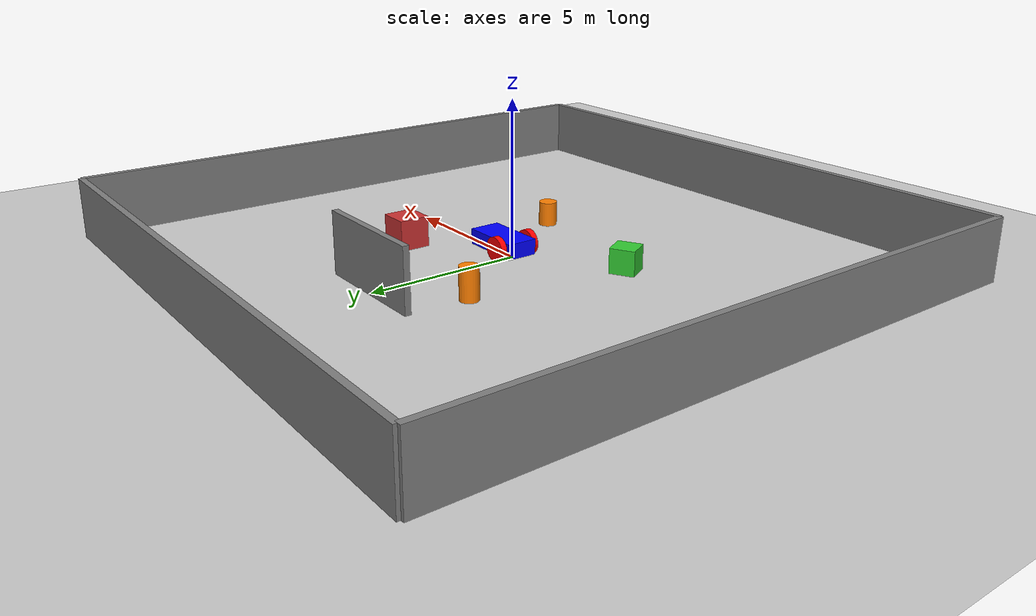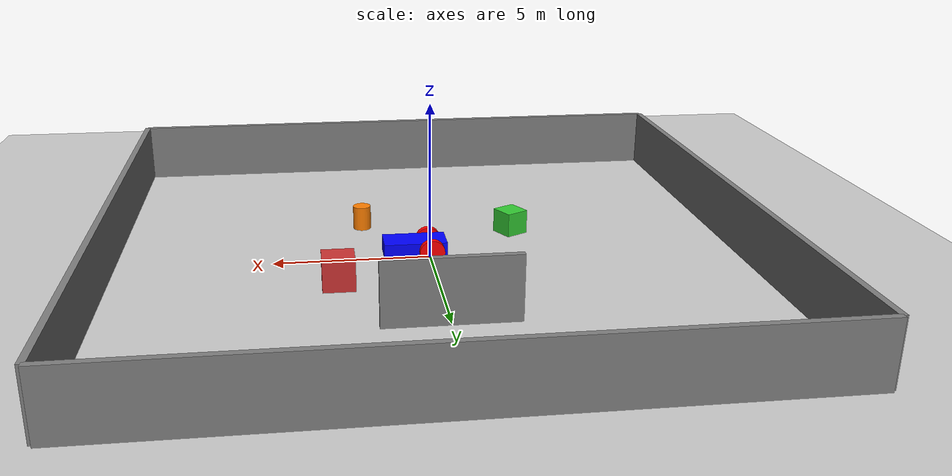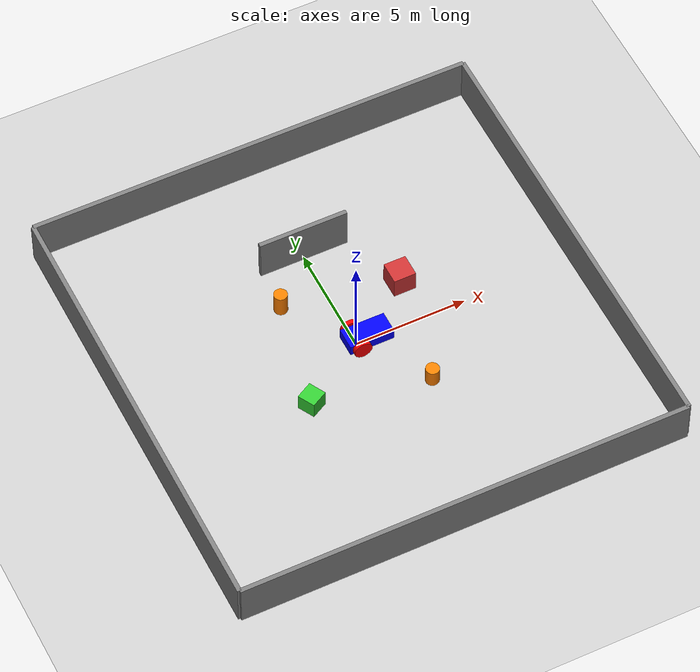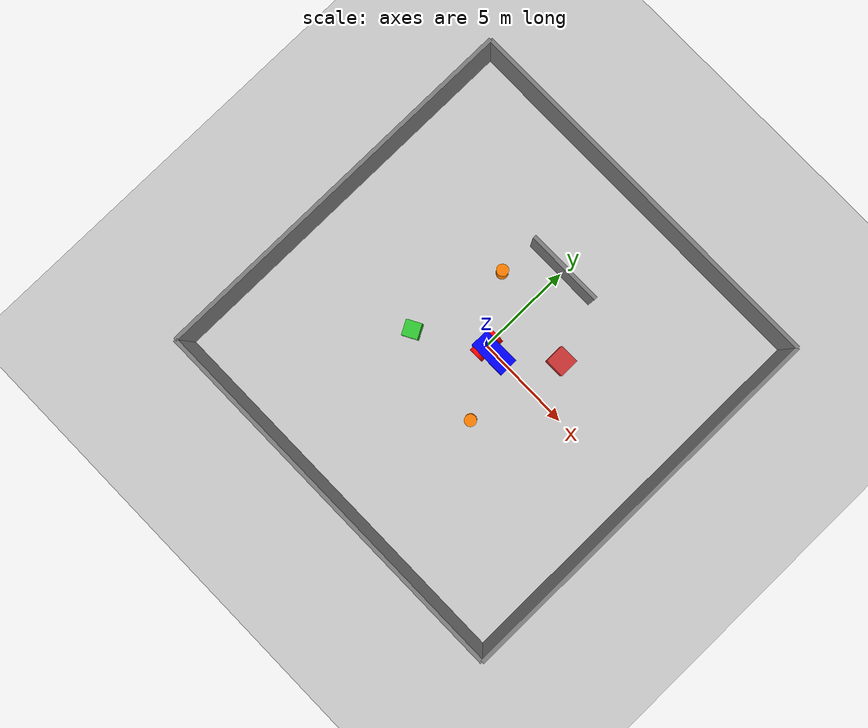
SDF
<?xml version="1.0" ?>
<sdf version="1.10">
    <world name="car_world">
        <!-- PHYSICS CONFIGURATION -->
        <physics name="1ms" type="ignored">
            <max_step_size>0.001</max_step_size>
            <real_time_factor>1.0</real_time_factor>
        </physics>

        <!-- SYSTEM PLUGINS -->
        <plugin filename="gz-sim-physics-system" name="gz::sim::systems::Physics"></plugin>
        <plugin filename="gz-sim-user-commands-system" name="gz::sim::systems::UserCommands"></plugin>
        <plugin filename="gz-sim-scene-broadcaster-system" name="gz::sim::systems::SceneBroadcaster"></plugin>
        <plugin filename="gz-sim-contact-system" name="gz::sim::systems::Contact"></plugin>
        <plugin filename="gz-sim-imu-system" name="gz::sim::systems::Imu"></plugin>
        <plugin filename="gz-sim-sensors-system" name="gz::sim::systems::Sensors">
            <render_engine>ogre2</render_engine>
        </plugin>

        <!-- GUI CONFIGURATION -->
        <gui fullscreen="0">
            <!-- 3D Scene -->
            <plugin filename="MinimalScene" name="3D View">
                <gz-gui>
                    <title>3D View</title>
                    <property type="bool" key="showTitleBar">false</property>
                    <property type="string" key="state">docked</property>
                </gz-gui>
                <engine>ogre2</engine>
                <scene>scene</scene>
                <ambient_light>0.4 0.4 0.4</ambient_light>
                <background_color>0.8 0.8 0.8</background_color>
                <camera_pose>-6 0 6 0 0.5 0</camera_pose>
                <camera_clip>
                    <near>0.25</near>
                    <far>25000</far>
                </camera_clip>
            </plugin>

            <!-- Scene interaction plugins -->
            <plugin filename="EntityContextMenuPlugin" name="Entity context menu">
                <gz-gui>
                    <property key="state" type="string">floating</property>
                    <property key="width" type="double">5</property>
                    <property key="height" type="double">5</property>
                    <property key="showTitleBar" type="bool">false</property>
                </gz-gui>
            </plugin>

            <plugin filename="GzSceneManager" name="Scene Manager">
                <gz-gui>
                    <property key="resizable" type="bool">false</property>
                    <property key="width" type="double">5</property>
                    <property key="height" type="double">5</property>
                    <property key="state" type="string">floating</property>
                    <property key="showTitleBar" type="bool">false</property>
                </gz-gui>
            </plugin>

            <plugin filename="InteractiveViewControl" name="Interactive view control">
                <gz-gui>
                    <property key="resizable" type="bool">false</property>
                    <property key="width" type="double">5</property>
                    <property key="height" type="double">5</property>
                    <property key="state" type="string">floating</property>
                    <property key="showTitleBar" type="bool">false</property>
                </gz-gui>
            </plugin>

            <plugin filename="CameraTracking" name="Camera Tracking">
                <gz-gui>
                    <property key="resizable" type="bool">false</property>
                    <property key="width" type="double">5</property>
                    <property key="height" type="double">5</property>
                    <property key="state" type="string">floating</property>
                    <property key="showTitleBar" type="bool">false</property>
                </gz-gui>
            </plugin>

            <plugin filename="MarkerManager" name="Marker manager">
                <gz-gui>
                    <property key="resizable" type="bool">false</property>
                    <property key="width" type="double">5</property>
                    <property key="height" type="double">5</property>
                    <property key="state" type="string">floating</property>
                    <property key="showTitleBar" type="bool">false</property>
                </gz-gui>
            </plugin>

            <plugin filename="SelectEntities" name="Select Entities">
                <gz-gui>
                    <property key="resizable" type="bool">false</property>
                    <property key="width" type="double">5</property>
                    <property key="height" type="double">5</property>
                    <property key="state" type="string">floating</property>
                    <property key="showTitleBar" type="bool">false</property>
                </gz-gui>
            </plugin>

            <plugin filename="VisualizationCapabilities" name="Visualization Capabilities">
                <gz-gui>
                    <property key="resizable" type="bool">false</property>
                    <property key="width" type="double">5</property>
                    <property key="height" type="double">5</property>
                    <property key="state" type="string">floating</property>
                    <property key="showTitleBar" type="bool">false</property>
                </gz-gui>
            </plugin>

            <!-- World Control -->
            <plugin filename="WorldControl" name="World control">
                <gz-gui>
                    <title>World control</title>
                    <property type="bool" key="showTitleBar">false</property>
                    <property type="bool" key="resizable">false</property>
                    <property type="double" key="height">72</property>
                    <property type="double" key="width">121</property>
                    <property type="double" key="z">1</property>
                    <property type="string" key="state">floating</property>
                    <anchors target="3D View">
                        <line own="left" target="left"/>
                        <line own="bottom" target="bottom"/>
                    </anchors>
                </gz-gui>
                <play_pause>true</play_pause>
                <step>true</step>
                <start_paused>true</start_paused>
            </plugin>

            <!-- World Stats -->
            <plugin filename="WorldStats" name="World stats">
                <gz-gui>
                    <title>World stats</title>
                    <property type="bool" key="showTitleBar">false</property>
                    <property type="bool" key="resizable">false</property>
                    <property type="double" key="height">110</property>
                    <property type="double" key="width">290</property>
                    <property type="double" key="z">1</property>
                    <property type="string" key="state">floating</property>
                    <anchors target="3D View">
                        <line own="right" target="right"/>
                        <line own="bottom" target="bottom"/>
                    </anchors>
                </gz-gui>
                <sim_time>true</sim_time>
                <real_time>true</real_time>
                <real_time_factor>true</real_time_factor>
                <iterations>true</iterations>
            </plugin>

            <!-- Entity Tree -->
            <plugin filename="EntityTree" name="Entity tree">
                <gz-gui>
                    <property type="string" key="state">docked</property>
                </gz-gui>
            </plugin>

            <!-- Image Display -->
            <plugin filename="ImageDisplay" name="Image Display">
                <gz-gui>
                    <property type="bool" key="showTitleBar">true</property>
                    <property type="string" key="state">docked</property>
                </gz-gui>
                <topic>camera</topic>
            </plugin>

            <!-- Visualize Lidar -->
            <plugin filename="VisualizeLidar" name="Visualize Lidar">
                <gz-gui>
                    <property type="string" key="state">docked</property>
                </gz-gui>
                <topic>scan</topic>
                <non_hitting_opacity>0.0</non_hitting_opacity>
            </plugin>

            <!-- Key Publisher -->
            <plugin filename="KeyPublisher" name="Key Publisher"/>
        </gui>

        <!-- KEYBOARD CONTROL PLUGINS -->
        <!-- Moving Forward -->
        <plugin filename="gz-sim-triggered-publisher-system" name="gz::sim::systems::TriggeredPublisher">
            <input type="gz.msgs.Int32" topic="/keyboard/keypress">
                <match field="data">16777235</match>
            </input>
            <output type="gz.msgs.Twist" topic="/cmd_vel">
                linear: {x: 2.0}, angular: {z: 0.0}
            </output>
        </plugin>

        <!-- Moving Backward -->
        <plugin filename="gz-sim-triggered-publisher-system" name="gz::sim::systems::TriggeredPublisher">
            <input type="gz.msgs.Int32" topic="/keyboard/keypress">
                <match field="data">16777237</match>
            </input>
            <output type="gz.msgs.Twist" topic="/cmd_vel">
                linear: {x: -2.0}, angular: {z: 0.0}
            </output>
        </plugin>

        <!-- Moving Left -->
        <plugin filename="gz-sim-triggered-publisher-system" name="gz::sim::systems::TriggeredPublisher">
            <input type="gz.msgs.Int32" topic="/keyboard/keypress">
                <match field="data">16777234</match>
            </input>
            <output type="gz.msgs.Twist" topic="/cmd_vel">
                linear: {x: 0.0}, angular: {z: 2.0}
            </output>
        </plugin>

        <!-- Moving Right -->
        <plugin filename="gz-sim-triggered-publisher-system" name="gz::sim::systems::TriggeredPublisher">
            <input type="gz.msgs.Int32" topic="/keyboard/keypress">
                <match field="data">16777236</match>
            </input>
            <output type="gz.msgs.Twist" topic="/cmd_vel">
                linear: {x: 0.0}, angular: {z: -2.0}
            </output>
        </plugin>

        <!-- LIGHTING -->
        <light type="directional" name="sun">
            <cast_shadows>true</cast_shadows>
            <pose>0 0 10 0 0 0</pose>
            <diffuse>0.8 0.8 0.8 1</diffuse>
            <specular>0.2 0.2 0.2 1</specular>
            <attenuation>
                <range>1000</range>
                <constant>0.9</constant>
                <linear>0.01</linear>
                <quadratic>0.001</quadratic>
            </attenuation>
            <direction>-0.5 0.1 -0.9</direction>
        </light>

        <!-- GROUND PLANE -->
        <model name="ground_plane">
            <static>true</static>
            <link name="link">
                <collision name="collision">
                    <geometry>
                        <plane>
                            <normal>0 0 1</normal>
                        </plane>
                    </geometry>
                </collision>
                <visual name="visual">
                    <geometry>
                        <plane>
                            <normal>0 0 1</normal>
                            <size>100 100</size>
                        </plane>
                    </geometry>
                    <material>
                        <ambient>0.8 0.8 0.8 1</ambient>
                        <diffuse>0.8 0.8 0.8 1</diffuse>
                        <specular>0.8 0.8 0.8 1</specular>
                    </material>
                </visual>
            </link>
        </model>

        <!-- BOUNDARY WALLS -->
        <model name="boundary_walls">
            <static>true</static>

            <!-- North Wall -->
            <link name="north_wall">
                <pose>0 10 1 0 0 0</pose>
                <collision name="collision">
                    <geometry>
                        <box>
                            <size>20 0.2 2</size>
                        </box>
                    </geometry>
                </collision>
                <visual name="visual">
                    <geometry>
                        <box>
                            <size>20 0.2 2</size>
                        </box>
                    </geometry>
                    <material>
                        <ambient>0.5 0.5 0.5 1</ambient>
                        <diffuse>0.5 0.5 0.5 1</diffuse>
                        <specular>0.5 0.5 0.5 1</specular>
                    </material>
                </visual>
            </link>

            <!-- South Wall -->
            <link name="south_wall">
                <pose>0 -10 1 0 0 0</pose>
                <collision name="collision">
                    <geometry>
                        <box>
                            <size>20 0.2 2</size>
                        </box>
                    </geometry>
                </collision>
                <visual name="visual">
                    <geometry>
                        <box>
                            <size>20 0.2 2</size>
                        </box>
                    </geometry>
                    <material>
                        <ambient>0.5 0.5 0.5 1</ambient>
                        <diffuse>0.5 0.5 0.5 1</diffuse>
                        <specular>0.5 0.5 0.5 1</specular>
                    </material>
                </visual>
            </link>

            <!-- East Wall -->
            <link name="east_wall">
                <pose>10 0 1 0 0 0</pose>
                <collision name="collision">
                    <geometry>
                        <box>
                            <size>0.2 20 2</size>
                        </box>
                    </geometry>
                </collision>
                <visual name="visual">
                    <geometry>
                        <box>
                            <size>0.2 20 2</size>
                        </box>
                    </geometry>
                    <material>
                        <ambient>0.5 0.5 0.5 1</ambient>
                        <diffuse>0.5 0.5 0.5 1</diffuse>
                        <specular>0.5 0.5 0.5 1</specular>
                    </material>
                </visual>
            </link>

            <!-- West Wall -->
            <link name="west_wall">
                <pose>-10 0 1 0 0 0</pose>
                <collision name="collision">
                    <geometry>
                        <box>
                            <size>0.2 20 2</size>
                        </box>
                    </geometry>
                </collision>
                <visual name="visual">
                    <geometry>
                        <box>
                            <size>0.2 20 2</size>
                        </box>
                    </geometry>
                    <material>
                        <ambient>0.5 0.5 0.5 1</ambient>
                        <diffuse>0.5 0.5 0.5 1</diffuse>
                        <specular>0.5 0.5 0.5 1</specular>
                    </material>
                </visual>
            </link>
        </model>

        <!-- ROBOT MODEL -->
        <model name='vehicle_blue' canonical_link='chassis'>
            <pose relative_to='world'>0 0 0 0 0 0</pose>

            <!-- Chassis Link -->
            <link name='chassis'>
                <pose relative_to='__model__'>0.5 0 0.4 0 0 0</pose>

                <!-- GPU LiDAR Sensor -->
                <sensor name='gpu_lidar' type='gpu_lidar'>
                    <pose relative_to='lidar_frame'>0 0 0 0 0 0</pose>
                    <topic>scan</topic>
                    <update_rate>10</update_rate>
                    <ray>
                        <scan>
                            <horizontal>
                                <samples>360</samples>
                                <resolution>1</resolution>
                                <min_angle>-3.14159</min_angle>
                                <max_angle>3.14159</max_angle>
                            </horizontal>
                            <vertical>
                                <samples>1</samples>
                                <resolution>0.01</resolution>
                                <min_angle>0</min_angle>
                                <max_angle>0</max_angle>
                            </vertical>
                        </scan>
                        <range>
                            <min>0.08</min>
                            <max>10.0</max>
                            <resolution>0.01</resolution>
                        </range>
                    </ray>
                    <always_on>1</always_on>
                    <visualize>true</visualize>
                </sensor>

                <!-- Camera Sensor -->
                <sensor name="camera" type="camera">
                    <pose relative_to='camera_frame'>0 0 0 0 0 0</pose>
                    <camera>
                        <horizontal_fov>1.047</horizontal_fov>
                        <image>
                            <width>320</width>
                            <height>240</height>
                        </image>
                        <clip>
                            <near>0.1</near>
                            <far>100</far>
                        </clip>
                    </camera>
                    <always_on>1</always_on>
                    <update_rate>30</update_rate>
                    <visualize>true</visualize>
                    <topic>camera</topic>
                </sensor>

                <!-- IMU Sensor -->
                <sensor name="imu_sensor" type="imu">
                    <always_on>1</always_on>
                    <update_rate>1</update_rate>
                    <visualize>true</visualize>
                    <topic>imu</topic>
                </sensor>

                <!-- Inertial Properties -->
                <inertial>
                    <mass>1.14395</mass>
                    <inertia>
                        <ixx>0.095329</ixx>
                        <ixy>0</ixy>
                        <ixz>0</ixz>
                        <iyy>0.381317</iyy>
                        <iyz>0</iyz>
                        <izz>0.476646</izz>
                    </inertia>
                </inertial>

                <!-- Visual -->
                <visual name='visual'>
                    <geometry>
                        <box>
                            <size>2.0 1.0 0.5</size>
                        </box>
                    </geometry>
                    <material>
                        <ambient>0.0 0.0 1.0 1</ambient>
                        <diffuse>0.0 0.0 1.0 1</diffuse>
                        <specular>0.0 0.0 1.0 1</specular>
                    </material>
                </visual>

                <!-- Collision -->
                <collision name='collision'>
                    <geometry>
                        <box>
                            <size>2.0 1.0 0.5</size>
                        </box>
                    </geometry>
                </collision>
            </link>

            <!-- Sensor Frames -->
            <frame name="lidar_frame" attached_to='chassis'>
                <pose>0.8 0 0.5 0 0 0</pose>
            </frame>

            <frame name="camera_frame" attached_to='chassis'>
                <pose>0.8 0 1 0 0 0</pose>
            </frame>

            <!-- Left Wheel -->
            <link name='left_wheel'>
                <pose relative_to="chassis">-0.5 0.6 0 -1.5707 0 0</pose>
                <inertial>
                    <mass>1</mass>
                    <inertia>
                        <ixx>0.043333</ixx>
                        <ixy>0</ixy>
                        <ixz>0</ixz>
                        <iyy>0.043333</iyy>
                        <iyz>0</iyz>
                        <izz>0.08</izz>
                    </inertia>
                </inertial>
                <visual name='visual'>
                    <geometry>
                        <cylinder>
                            <radius>0.4</radius>
                            <length>0.2</length>
                        </cylinder>
                    </geometry>
                    <material>
                        <ambient>1.0 0.0 0.0 1</ambient>
                        <diffuse>1.0 0.0 0.0 1</diffuse>
                        <specular>1.0 0.0 0.0 1</specular>
                    </material>
                </visual>
                <collision name='collision'>
                    <geometry>
                        <cylinder>
                            <radius>0.4</radius>
                            <length>0.2</length>
                        </cylinder>
                    </geometry>
                </collision>
            </link>

            <!-- Right Wheel -->
            <link name='right_wheel'>
                <pose relative_to="chassis">-0.5 -0.6 0 -1.5707 0 0</pose>
                <inertial>
                    <mass>1</mass>
                    <inertia>
                        <ixx>0.043333</ixx>
                        <ixy>0</ixy>
                        <ixz>0</ixz>
                        <iyy>0.043333</iyy>
                        <iyz>0</iyz>
                        <izz>0.08</izz>
                    </inertia>
                </inertial>
                <visual name='visual'>
                    <geometry>
                        <cylinder>
                            <radius>0.4</radius>
                            <length>0.2</length>
                        </cylinder>
                    </geometry>
                    <material>
                        <ambient>1.0 0.0 0.0 1</ambient>
                        <diffuse>1.0 0.0 0.0 1</diffuse>
                        <specular>1.0 0.0 0.0 1</specular>
                    </material>
                </visual>
                <collision name='collision'>
                    <geometry>
                        <cylinder>
                            <radius>0.4</radius>
                            <length>0.2</length>
                        </cylinder>
                    </geometry>
                </collision>
            </link>

            <!-- Caster Wheel Frame -->
            <frame name="caster_frame" attached_to='chassis'>
                <pose>0.8 0 -0.2 0 0 0</pose>
            </frame>

            <!-- Caster Wheel -->
            <link name='caster'>
                <pose relative_to='caster_frame'/>
                <inertial>
                    <mass>1</mass>
                    <inertia>
                        <ixx>0.016</ixx>
                        <ixy>0</ixy>
                        <ixz>0</ixz>
                        <iyy>0.016</iyy>
                        <iyz>0</iyz>
                        <izz>0.016</izz>
                    </inertia>
                </inertial>
                <visual name='visual'>
                    <geometry>
                        <sphere>
                            <radius>0.2</radius>
                        </sphere>
                    </geometry>
                    <material>
                        <ambient>0.0 1 0.0 1</ambient>
                        <diffuse>0.0 1 0.0 1</diffuse>
                        <specular>0.0 1 0.0 1</specular>
                    </material>
                </visual>
                <collision name='collision'>
                    <geometry>
                        <sphere>
                            <radius>0.2</radius>
                        </sphere>
                    </geometry>
                </collision>
            </link>

            <!-- Joints -->
            <joint name='left_wheel_joint' type='revolute'>
                <pose relative_to='left_wheel'/>
                <parent>chassis</parent>
                <child>left_wheel</child>
                <axis>
                    <xyz expressed_in='__model__'>0 1 0</xyz>
                    <limit>
                        <lower>-1.79769e+308</lower>
                        <upper>1.79769e+308</upper>
                    </limit>
                </axis>
            </joint>

            <joint name='right_wheel_joint' type='revolute'>
                <pose relative_to='right_wheel'/>
                <parent>chassis</parent>
                <child>right_wheel</child>
                <axis>
                    <xyz expressed_in='__model__'>0 1 0</xyz>
                    <limit>
                        <lower>-1.79769e+308</lower>
                        <upper>1.79769e+308</upper>
                    </limit>
                </axis>
            </joint>

            <joint name='caster_wheel' type='ball'>
                <parent>chassis</parent>
                <child>caster</child>
            </joint>

            <!-- Differential Drive Plugin -->
            <plugin filename="gz-sim-diff-drive-system" name="gz::sim::systems::DiffDrive">
                <left_joint>left_wheel_joint</left_joint>
                <right_joint>right_wheel_joint</right_joint>
                <wheel_separation>1.2</wheel_separation>
                <wheel_radius>0.4</wheel_radius>
                <odom_publish_frequency>1</odom_publish_frequency>
                <topic>cmd_vel</topic>
            </plugin>
        </model>

        <!-- OBSTACLES -->
        <!-- Box Obstacle 1 -->
        <model name="obstacle_box_1">
            <static>true</static>
            <pose>3 2 0.5 0 0 0</pose>
            <link name="link">
                <collision name="collision">
                    <geometry>
                        <box>
                            <size>1.0 1.0 1.0</size>
                        </box>
                    </geometry>
                </collision>
                <visual name="visual">
                    <geometry>
                        <box>
                            <size>1.0 1.0 1.0</size>
                        </box>
                    </geometry>
                    <material>
                        <ambient>0.8 0.2 0.2 1</ambient>
                        <diffuse>0.8 0.2 0.2 1</diffuse>
                        <specular>0.8 0.2 0.2 1</specular>
                    </material>
                </visual>
            </link>
        </model>

        <!-- Box Obstacle 2 -->
        <model name="obstacle_box_2">
            <static>true</static>
            <pose>-3 -2 0.4 0 0 0.5</pose>
            <link name="link">
                <collision name="collision">
                    <geometry>
                        <box>
                            <size>0.8 0.8 0.8</size>
                        </box>
                    </geometry>
                </collision>
                <visual name="visual">
                    <geometry>
                        <box>
                            <size>0.8 0.8 0.8</size>
                        </box>
                    </geometry>
                    <material>
                        <ambient>0.2 0.8 0.2 1</ambient>
                        <diffuse>0.2 0.8 0.2 1</diffuse>
                        <specular>0.2 0.8 0.2 1</specular>
                    </material>
                </visual>
            </link>
        </model>

        <!-- Cylinder Obstacle 1 -->
        <model name="obstacle_cylinder_1">
            <static>true</static>
            <pose>-2 3 0.4 0 0 0</pose>
            <link name="link">
                <collision name="collision">
                    <geometry>
                        <cylinder>
                            <radius>0.3</radius>
                            <length>1.5</length>
                        </cylinder>
                    </geometry>
                </collision>
                <visual name="visual">
                    <geometry>
                        <cylinder>
                            <radius>0.3</radius>
                            <length>1.2</length>
                        </cylinder>
                    </geometry>
                    <material>
                        <ambient>1.0 0.5 0.0 1</ambient>
                        <diffuse>1.0 0.5 0.0 1</diffuse>
                        <specular>1.0 0.5 0.0 1</specular>
                    </material>
                </visual>
            </link>
        </model>

        <!-- Cylinder Obstacle 2 -->
        <model name="obstacle_cylinder_2">
            <static>true</static>
            <pose>2 -3 0.4 0 0 0</pose>
            <link name="link">
                <collision name="collision">
                    <geometry>
                        <cylinder>
                            <radius>0.3</radius>
                            <length>0.8</length>
                        </cylinder>
                    </geometry>
                </collision>
                <visual name="visual">
                    <geometry>
                        <cylinder>
                            <radius>0.3</radius>
                            <length>0.8</length>
                        </cylinder>
                    </geometry>
                    <material>
                        <ambient>1.0 0.5 0.0 1</ambient>
                        <diffuse>1.0 0.5 0.0 1</diffuse>
                        <specular>1.0 0.5 0.0 1</specular>
                    </material>
                </visual>
            </link>
        </model>

        <!-- Wall Obstacle -->
        <model name="obstacle_wall">
            <static>true</static>
            <pose>0 5 1 0 0 0</pose>
            <link name="link">
                <collision name="collision">
                    <geometry>
                        <box>
                            <size>4.0 0.2 2.0</size>
                        </box>
                    </geometry>
                </collision>
                <visual name="visual">
                    <geometry>
                        <box>
                            <size>4.0 0.2 2.0</size>
                        </box>
                    </geometry>
                    <material>
                        <ambient>0.5 0.5 0.5 1</ambient>
                        <diffuse>0.5 0.5 0.5 1</diffuse>
                        <specular>0.5 0.5 0.5 1</specular>
                    </material>
                </visual>
            </link>
        </model>
    </world>
</sdf>
